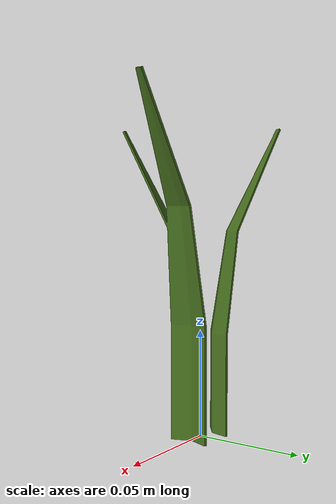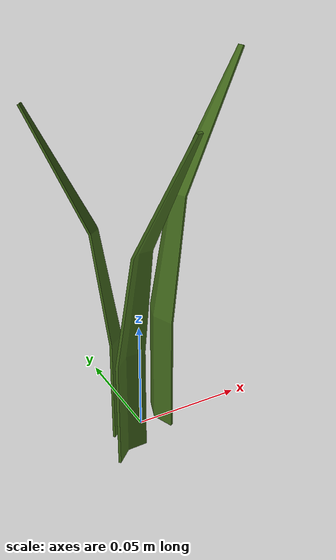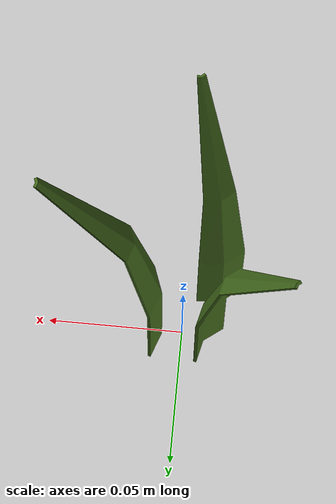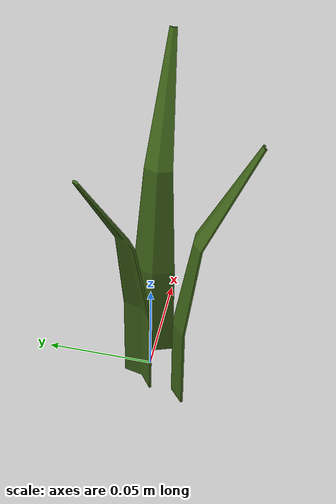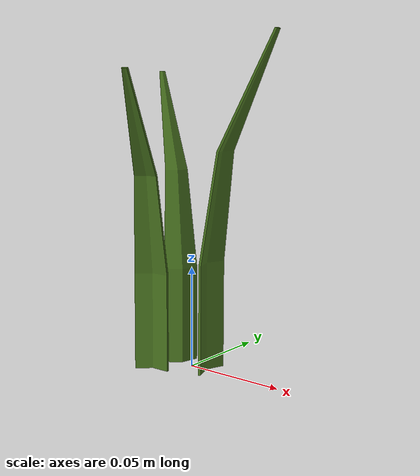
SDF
<?xml version='1.0'?>
<sdf version='1.6'>
  <model name='Grass'>
    <link name='link'>
      <pose frame=''>0 0 0 0 -0 0</pose>
      <inertial>
        <mass>1</mass>
        <inertia>
          <ixx>0.145833</ixx>
          <ixy>0</ixy>
          <ixz>0</ixz>
          <iyy>0.145833</iyy>
          <iyz>0</iyz>
          <izz>0.125</izz>
        </inertia>
        <pose frame=''>0 0 0 0 -0 0</pose>
      </inertial>
      <self_collide>0</self_collide>
      <kinematic>0</kinematic>
      <gravity>1</gravity>
      <visual name='visual'>
        <geometry>
          <mesh>
            <uri>model://Grass/Herbe.dae</uri>
            <scale>1 1 1</scale>
          </mesh>
        </geometry>
        <material>
          <script>
            <name>Gazebo/Grey</name>
            <uri>file://media/materials/scripts/gazebo.material</uri>
          </script>
          <ambient>0.9 1 0.5 0</ambient>
          <diffuse>0.25 0.4 0.1 0</diffuse>
          <specular>0 0 0 1</specular>
          <emissive>0 0 0 1</emissive>
          <shader type='vertex'>
            <normal_map>__default__</normal_map>
          </shader>
        </material>
        <pose frame=''>0 0 0 0 -0 0</pose>
        <cast_shadows>1</cast_shadows>
        <transparency>0</transparency>
      </visual>
    </link>
    <static>1</static>
    <allow_auto_disable>1</allow_auto_disable>
  </model>
</sdf>
